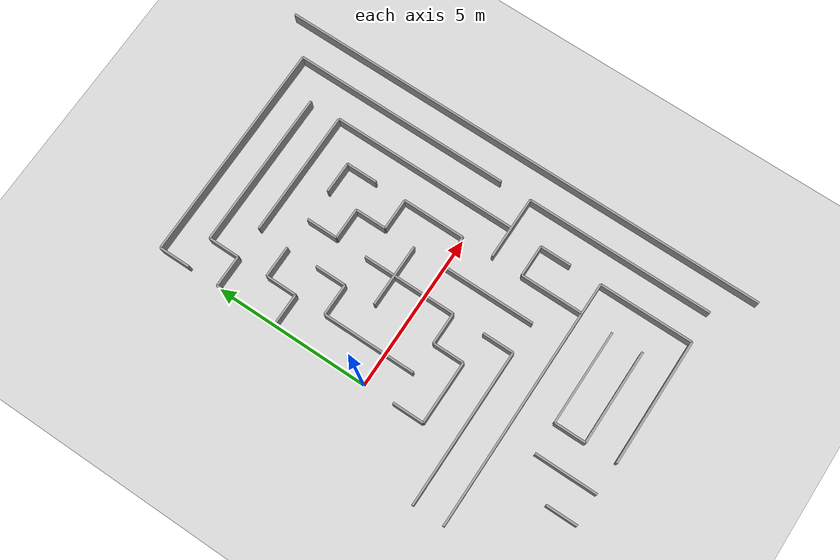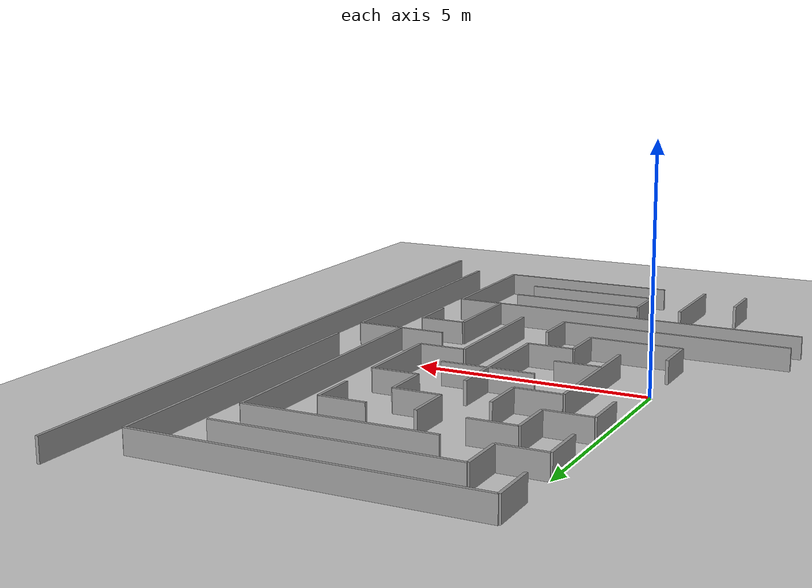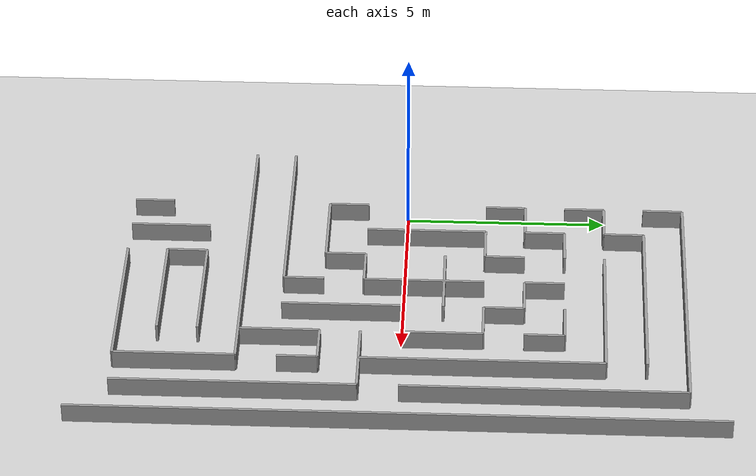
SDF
<sdf version="1.7">
 <world name="maze_world">
  <include><uri>model://sun</uri></include>
  <include><uri>model://ground_plane</uri></include>
  <model name="optimized_wall_2">
   <static>1</static>
   <pose>4.0 -7.0 0.25 0 0 0.0</pose>
   <link name="link">
    <collision name="collision"><geometry><box><size>4.0 0.066 0.5</size></box></geometry></collision>
    <visual name="visual">
     <geometry><box><size>4.0 0.066 0.5</size></box></geometry>
     <material>
      <script><uri>file://media/materials/scripts/gazebo.material</uri><name>Gazebo/Grey</name></script>
     </material>
    </visual>
   </link>
  </model>
  <model name="optimized_wall_5">
   <static>1</static>
   <pose>3.5 -6.0 0.25 0 0 0.0</pose>
   <link name="link">
    <collision name="collision"><geometry><box><size>3.0 0.066 0.5</size></box></geometry></collision>
    <visual name="visual">
     <geometry><box><size>3.0 0.066 0.5</size></box></geometry>
     <material>
      <script><uri>file://media/materials/scripts/gazebo.material</uri><name>Gazebo/Grey</name></script>
     </material>
    </visual>
   </link>
  </model>
  <model name="optimized_wall_8">
   <static>1</static>
   <pose>3.5 -5.0 0.25 0 0 0.0</pose>
   <link name="link">
    <collision name="collision"><geometry><box><size>3.0 0.066 0.5</size></box></geometry></collision>
    <visual name="visual">
     <geometry><box><size>3.0 0.066 0.5</size></box></geometry>
     <material>
      <script><uri>file://media/materials/scripts/gazebo.material</uri><name>Gazebo/Grey</name></script>
     </material>
    </visual>
   </link>
  </model>
  <model name="optimized_wall_10">
   <static>1</static>
   <pose>2.0 -4.0 0.25 0 0 0.0</pose>
   <link name="link">
    <collision name="collision"><geometry><box><size>8.0 0.066 0.5</size></box></geometry></collision>
    <visual name="visual">
     <geometry><box><size>8.0 0.066 0.5</size></box></geometry>
     <material>
      <script><uri>file://media/materials/scripts/gazebo.material</uri><name>Gazebo/Grey</name></script>
     </material>
    </visual>
   </link>
  </model>
  <model name="optimized_wall_12">
   <static>1</static>
   <pose>0.5 -3.0 0.25 0 0 0.0</pose>
   <link name="link">
    <collision name="collision"><geometry><box><size>5.0 0.066 0.5</size></box></geometry></collision>
    <visual name="visual">
     <geometry><box><size>5.0 0.066 0.5</size></box></geometry>
     <material>
      <script><uri>file://media/materials/scripts/gazebo.material</uri><name>Gazebo/Grey</name></script>
     </material>
    </visual>
   </link>
  </model>
  <model name="optimized_wall_15">
   <static>1</static>
   <pose>1.0 -2.0 0.25 0 0 0.0</pose>
   <link name="link">
    <collision name="collision"><geometry><box><size>2.0 0.066 0.5</size></box></geometry></collision>
    <visual name="visual">
     <geometry><box><size>2.0 0.066 0.5</size></box></geometry>
     <material>
      <script><uri>file://media/materials/scripts/gazebo.material</uri><name>Gazebo/Grey</name></script>
     </material>
    </visual>
   </link>
  </model>
  <model name="optimized_wall_16">
   <static>1</static>
   <pose>5.5 -2.0 0.25 0 0 0.0</pose>
   <link name="link">
    <collision name="collision"><geometry><box><size>1.0 0.066 0.5</size></box></geometry></collision>
    <visual name="visual">
     <geometry><box><size>1.0 0.066 0.5</size></box></geometry>
     <material>
      <script><uri>file://media/materials/scripts/gazebo.material</uri><name>Gazebo/Grey</name></script>
     </material>
    </visual>
   </link>
  </model>
  <model name="optimized_wall_19">
   <static>1</static>
   <pose>2.5 -1.0 0.25 0 0 0.0</pose>
   <link name="link">
    <collision name="collision"><geometry><box><size>1.0 0.066 0.5</size></box></geometry></collision>
    <visual name="visual">
     <geometry><box><size>1.0 0.066 0.5</size></box></geometry>
     <material>
      <script><uri>file://media/materials/scripts/gazebo.material</uri><name>Gazebo/Grey</name></script>
     </material>
    </visual>
   </link>
  </model>
  <model name="optimized_wall_20">
   <static>1</static>
   <pose>6.0 -1.0 0.25 0 0 0.0</pose>
   <link name="link">
    <collision name="collision"><geometry><box><size>2.0 0.066 0.5</size></box></geometry></collision>
    <visual name="visual">
     <geometry><box><size>2.0 0.066 0.5</size></box></geometry>
     <material>
      <script><uri>file://media/materials/scripts/gazebo.material</uri><name>Gazebo/Grey</name></script>
     </material>
    </visual>
   </link>
  </model>
  <model name="optimized_wall_22">
   <static>1</static>
   <pose>1.5 0.0 0.25 0 0 0.0</pose>
   <link name="link">
    <collision name="collision"><geometry><box><size>1.0 0.066 0.5</size></box></geometry></collision>
    <visual name="visual">
     <geometry><box><size>1.0 0.066 0.5</size></box></geometry>
     <material>
      <script><uri>file://media/materials/scripts/gazebo.material</uri><name>Gazebo/Grey</name></script>
     </material>
    </visual>
   </link>
  </model>
  <model name="optimized_wall_23">
   <static>1</static>
   <pose>4.5 0.0 0.25 0 0 0.0</pose>
   <link name="link">
    <collision name="collision"><geometry><box><size>1.0 0.066 0.5</size></box></geometry></collision>
    <visual name="visual">
     <geometry><box><size>1.0 0.066 0.5</size></box></geometry>
     <material>
      <script><uri>file://media/materials/scripts/gazebo.material</uri><name>Gazebo/Grey</name></script>
     </material>
    </visual>
   </link>
  </model>
  <model name="optimized_wall_25">
   <static>1</static>
   <pose>3.0 1.0 0.25 0 0 0.0</pose>
   <link name="link">
    <collision name="collision"><geometry><box><size>2.0 0.066 0.5</size></box></geometry></collision>
    <visual name="visual">
     <geometry><box><size>2.0 0.066 0.5</size></box></geometry>
     <material>
      <script><uri>file://media/materials/scripts/gazebo.material</uri><name>Gazebo/Grey</name></script>
     </material>
    </visual>
   </link>
  </model>
  <model name="optimized_wall_28">
   <static>1</static>
   <pose>1.5 2.0 0.25 0 0 0.0</pose>
   <link name="link">
    <collision name="collision"><geometry><box><size>1.0 0.066 0.5</size></box></geometry></collision>
    <visual name="visual">
     <geometry><box><size>1.0 0.066 0.5</size></box></geometry>
     <material>
      <script><uri>file://media/materials/scripts/gazebo.material</uri><name>Gazebo/Grey</name></script>
     </material>
    </visual>
   </link>
  </model>
  <model name="optimized_wall_29">
   <static>1</static>
   <pose>4.5 2.0 0.25 0 0 0.0</pose>
   <link name="link">
    <collision name="collision"><geometry><box><size>1.0 0.066 0.5</size></box></geometry></collision>
    <visual name="visual">
     <geometry><box><size>1.0 0.066 0.5</size></box></geometry>
     <material>
      <script><uri>file://media/materials/scripts/gazebo.material</uri><name>Gazebo/Grey</name></script>
     </material>
    </visual>
   </link>
  </model>
  <model name="optimized_wall_31">
   <static>1</static>
   <pose>0.5 3.0 0.25 0 0 0.0</pose>
   <link name="link">
    <collision name="collision"><geometry><box><size>1.0 0.066 0.5</size></box></geometry></collision>
    <visual name="visual">
     <geometry><box><size>1.0 0.066 0.5</size></box></geometry>
     <material>
      <script><uri>file://media/materials/scripts/gazebo.material</uri><name>Gazebo/Grey</name></script>
     </material>
    </visual>
   </link>
  </model>
  <model name="optimized_wall_32">
   <static>1</static>
   <pose>3.5 3.0 0.25 0 0 0.0</pose>
   <link name="link">
    <collision name="collision"><geometry><box><size>1.0 0.066 0.5</size></box></geometry></collision>
    <visual name="visual">
     <geometry><box><size>1.0 0.066 0.5</size></box></geometry>
     <material>
      <script><uri>file://media/materials/scripts/gazebo.material</uri><name>Gazebo/Grey</name></script>
     </material>
    </visual>
   </link>
  </model>
  <model name="optimized_wall_35">
   <static>1</static>
   <pose>1.5 4.0 0.25 0 0 0.0</pose>
   <link name="link">
    <collision name="collision"><geometry><box><size>1.0 0.066 0.5</size></box></geometry></collision>
    <visual name="visual">
     <geometry><box><size>1.0 0.066 0.5</size></box></geometry>
     <material>
      <script><uri>file://media/materials/scripts/gazebo.material</uri><name>Gazebo/Grey</name></script>
     </material>
    </visual>
   </link>
  </model>
  <model name="optimized_wall_36">
   <static>1</static>
   <pose>4.5 4.0 0.25 0 0 0.0</pose>
   <link name="link">
    <collision name="collision"><geometry><box><size>1.0 0.066 0.5</size></box></geometry></collision>
    <visual name="visual">
     <geometry><box><size>1.0 0.066 0.5</size></box></geometry>
     <material>
      <script><uri>file://media/materials/scripts/gazebo.material</uri><name>Gazebo/Grey</name></script>
     </material>
    </visual>
   </link>
  </model>
  <model name="optimized_wall_40">
   <static>1</static>
   <pose>0.5 5.0 0.25 0 0 0.0</pose>
   <link name="link">
    <collision name="collision"><geometry><box><size>1.0 0.066 0.5</size></box></geometry></collision>
    <visual name="visual">
     <geometry><box><size>1.0 0.066 0.5</size></box></geometry>
     <material>
      <script><uri>file://media/materials/scripts/gazebo.material</uri><name>Gazebo/Grey</name></script>
     </material>
    </visual>
   </link>
  </model>
  <model name="optimized_wall_41">
   <static>1</static>
   <pose>4.0 5.0 0.25 0 0 0.0</pose>
   <link name="link">
    <collision name="collision"><geometry><box><size>4.0 0.066 0.5</size></box></geometry></collision>
    <visual name="visual">
     <geometry><box><size>4.0 0.066 0.5</size></box></geometry>
     <material>
      <script><uri>file://media/materials/scripts/gazebo.material</uri><name>Gazebo/Grey</name></script>
     </material>
    </visual>
   </link>
  </model>
  <model name="optimized_wall_45">
   <static>1</static>
   <pose>3.5 6.0 0.25 0 0 0.0</pose>
   <link name="link">
    <collision name="collision"><geometry><box><size>5.0 0.066 0.5</size></box></geometry></collision>
    <visual name="visual">
     <geometry><box><size>5.0 0.066 0.5</size></box></geometry>
     <material>
      <script><uri>file://media/materials/scripts/gazebo.material</uri><name>Gazebo/Grey</name></script>
     </material>
    </visual>
   </link>
  </model>
  <model name="optimized_wall_48">
   <static>1</static>
   <pose>3.5 7.0 0.25 0 0 0.0</pose>
   <link name="link">
    <collision name="collision"><geometry><box><size>7.0 0.066 0.5</size></box></geometry></collision>
    <visual name="visual">
     <geometry><box><size>7.0 0.066 0.5</size></box></geometry>
     <material>
      <script><uri>file://media/materials/scripts/gazebo.material</uri><name>Gazebo/Grey</name></script>
     </material>
    </visual>
   </link>
  </model>
  <model name="optimized_wall_70">
   <static>1</static>
   <pose>0.0 -6.5 0.25 0 0 1.570796</pose>
   <link name="link">
    <collision name="collision"><geometry><box><size>1.0 0.066 0.5</size></box></geometry></collision>
    <visual name="visual">
     <geometry><box><size>1.0 0.066 0.5</size></box></geometry>
     <material>
      <script><uri>file://media/materials/scripts/gazebo.material</uri><name>Gazebo/Grey</name></script>
     </material>
    </visual>
   </link>
  </model>
  <model name="optimized_wall_71">
   <static>1</static>
   <pose>0.0 -1.5 0.25 0 0 1.570796</pose>
   <link name="link">
    <collision name="collision"><geometry><box><size>1.0 0.066 0.5</size></box></geometry></collision>
    <visual name="visual">
     <geometry><box><size>1.0 0.066 0.5</size></box></geometry>
     <material>
      <script><uri>file://media/materials/scripts/gazebo.material</uri><name>Gazebo/Grey</name></script>
     </material>
    </visual>
   </link>
  </model>
  <model name="optimized_wall_72">
   <static>1</static>
   <pose>0.0 2.5 0.25 0 0 1.570796</pose>
   <link name="link">
    <collision name="collision"><geometry><box><size>1.0 0.066 0.5</size></box></geometry></collision>
    <visual name="visual">
     <geometry><box><size>1.0 0.066 0.5</size></box></geometry>
     <material>
      <script><uri>file://media/materials/scripts/gazebo.material</uri><name>Gazebo/Grey</name></script>
     </material>
    </visual>
   </link>
  </model>
  <model name="optimized_wall_73">
   <static>1</static>
   <pose>0.0 4.5 0.25 0 0 1.570796</pose>
   <link name="link">
    <collision name="collision"><geometry><box><size>1.0 0.066 0.5</size></box></geometry></collision>
    <visual name="visual">
     <geometry><box><size>1.0 0.066 0.5</size></box></geometry>
     <material>
      <script><uri>file://media/materials/scripts/gazebo.material</uri><name>Gazebo/Grey</name></script>
     </material>
    </visual>
   </link>
  </model>
  <model name="optimized_wall_74">
   <static>1</static>
   <pose>0.0 6.5 0.25 0 0 1.570796</pose>
   <link name="link">
    <collision name="collision"><geometry><box><size>1.0 0.066 0.5</size></box></geometry></collision>
    <visual name="visual">
     <geometry><box><size>1.0 0.066 0.5</size></box></geometry>
     <material>
      <script><uri>file://media/materials/scripts/gazebo.material</uri><name>Gazebo/Grey</name></script>
     </material>
    </visual>
   </link>
  </model>
  <model name="optimized_wall_75">
   <static>1</static>
   <pose>1.0 -6.0 0.25 0 0 1.570796</pose>
   <link name="link">
    <collision name="collision"><geometry><box><size>2.0 0.066 0.5</size></box></geometry></collision>
    <visual name="visual">
     <geometry><box><size>2.0 0.066 0.5</size></box></geometry>
     <material>
      <script><uri>file://media/materials/scripts/gazebo.material</uri><name>Gazebo/Grey</name></script>
     </material>
    </visual>
   </link>
  </model>
  <model name="optimized_wall_76">
   <static>1</static>
   <pose>1.0 0.5 0.25 0 0 1.570796</pose>
   <link name="link">
    <collision name="collision"><geometry><box><size>3.0 0.066 0.5</size></box></geometry></collision>
    <visual name="visual">
     <geometry><box><size>3.0 0.066 0.5</size></box></geometry>
     <material>
      <script><uri>file://media/materials/scripts/gazebo.material</uri><name>Gazebo/Grey</name></script>
     </material>
    </visual>
   </link>
  </model>
  <model name="optimized_wall_77">
   <static>1</static>
   <pose>1.0 3.5 0.25 0 0 1.570796</pose>
   <link name="link">
    <collision name="collision"><geometry><box><size>1.0 0.066 0.5</size></box></geometry></collision>
    <visual name="visual">
     <geometry><box><size>1.0 0.066 0.5</size></box></geometry>
     <material>
      <script><uri>file://media/materials/scripts/gazebo.material</uri><name>Gazebo/Grey</name></script>
     </material>
    </visual>
   </link>
  </model>
  <model name="optimized_wall_78">
   <static>1</static>
   <pose>1.0 5.5 0.25 0 0 1.570796</pose>
   <link name="link">
    <collision name="collision"><geometry><box><size>1.0 0.066 0.5</size></box></geometry></collision>
    <visual name="visual">
     <geometry><box><size>1.0 0.066 0.5</size></box></geometry>
     <material>
      <script><uri>file://media/materials/scripts/gazebo.material</uri><name>Gazebo/Grey</name></script>
     </material>
    </visual>
   </link>
  </model>
  <model name="optimized_wall_79">
   <static>1</static>
   <pose>2.0 -5.5 0.25 0 0 1.570796</pose>
   <link name="link">
    <collision name="collision"><geometry><box><size>1.0 0.066 0.5</size></box></geometry></collision>
    <visual name="visual">
     <geometry><box><size>1.0 0.066 0.5</size></box></geometry>
     <material>
      <script><uri>file://media/materials/scripts/gazebo.material</uri><name>Gazebo/Grey</name></script>
     </material>
    </visual>
   </link>
  </model>
  <model name="optimized_wall_80">
   <static>1</static>
   <pose>2.0 -1.5 0.25 0 0 1.570796</pose>
   <link name="link">
    <collision name="collision"><geometry><box><size>1.0 0.066 0.5</size></box></geometry></collision>
    <visual name="visual">
     <geometry><box><size>1.0 0.066 0.5</size></box></geometry>
     <material>
      <script><uri>file://media/materials/scripts/gazebo.material</uri><name>Gazebo/Grey</name></script>
     </material>
    </visual>
   </link>
  </model>
  <model name="optimized_wall_81">
   <static>1</static>
   <pose>2.0 2.5 0.25 0 0 1.570796</pose>
   <link name="link">
    <collision name="collision"><geometry><box><size>1.0 0.066 0.5</size></box></geometry></collision>
    <visual name="visual">
     <geometry><box><size>1.0 0.066 0.5</size></box></geometry>
     <material>
      <script><uri>file://media/materials/scripts/gazebo.material</uri><name>Gazebo/Grey</name></script>
     </material>
    </visual>
   </link>
  </model>
  <model name="optimized_wall_82">
   <static>1</static>
   <pose>3.0 -2.5 0.25 0 0 1.570796</pose>
   <link name="link">
    <collision name="collision"><geometry><box><size>1.0 0.066 0.5</size></box></geometry></collision>
    <visual name="visual">
     <geometry><box><size>1.0 0.066 0.5</size></box></geometry>
     <material>
      <script><uri>file://media/materials/scripts/gazebo.material</uri><name>Gazebo/Grey</name></script>
     </material>
    </visual>
   </link>
  </model>
  <model name="optimized_wall_83">
   <static>1</static>
   <pose>3.0 0.5 0.25 0 0 1.570796</pose>
   <link name="link">
    <collision name="collision"><geometry><box><size>3.0 0.066 0.5</size></box></geometry></collision>
    <visual name="visual">
     <geometry><box><size>3.0 0.066 0.5</size></box></geometry>
     <material>
      <script><uri>file://media/materials/scripts/gazebo.material</uri><name>Gazebo/Grey</name></script>
     </material>
    </visual>
   </link>
  </model>
  <model name="optimized_wall_84">
   <static>1</static>
   <pose>3.0 3.5 0.25 0 0 1.570796</pose>
   <link name="link">
    <collision name="collision"><geometry><box><size>1.0 0.066 0.5</size></box></geometry></collision>
    <visual name="visual">
     <geometry><box><size>1.0 0.066 0.5</size></box></geometry>
     <material>
      <script><uri>file://media/materials/scripts/gazebo.material</uri><name>Gazebo/Grey</name></script>
     </material>
    </visual>
   </link>
  </model>
  <model name="optimized_wall_85">
   <static>1</static>
   <pose>4.0 -1.5 0.25 0 0 1.570796</pose>
   <link name="link">
    <collision name="collision"><geometry><box><size>3.0 0.066 0.5</size></box></geometry></collision>
    <visual name="visual">
     <geometry><box><size>3.0 0.066 0.5</size></box></geometry>
     <material>
      <script><uri>file://media/materials/scripts/gazebo.material</uri><name>Gazebo/Grey</name></script>
     </material>
    </visual>
   </link>
  </model>
  <model name="optimized_wall_86">
   <static>1</static>
   <pose>4.0 2.5 0.25 0 0 1.570796</pose>
   <link name="link">
    <collision name="collision"><geometry><box><size>1.0 0.066 0.5</size></box></geometry></collision>
    <visual name="visual">
     <geometry><box><size>1.0 0.066 0.5</size></box></geometry>
     <material>
      <script><uri>file://media/materials/scripts/gazebo.material</uri><name>Gazebo/Grey</name></script>
     </material>
    </visual>
   </link>
  </model>
  <model name="optimized_wall_87">
   <static>1</static>
   <pose>5.0 -3.0 0.25 0 0 1.570796</pose>
   <link name="link">
    <collision name="collision"><geometry><box><size>2.0 0.066 0.5</size></box></geometry></collision>
    <visual name="visual">
     <geometry><box><size>2.0 0.066 0.5</size></box></geometry>
     <material>
      <script><uri>file://media/materials/scripts/gazebo.material</uri><name>Gazebo/Grey</name></script>
     </material>
    </visual>
   </link>
  </model>
  <model name="optimized_wall_88">
   <static>1</static>
   <pose>5.0 1.0 0.25 0 0 1.570796</pose>
   <link name="link">
    <collision name="collision"><geometry><box><size>2.0 0.066 0.5</size></box></geometry></collision>
    <visual name="visual">
     <geometry><box><size>2.0 0.066 0.5</size></box></geometry>
     <material>
      <script><uri>file://media/materials/scripts/gazebo.material</uri><name>Gazebo/Grey</name></script>
     </material>
    </visual>
   </link>
  </model>
  <model name="optimized_wall_89">
   <static>1</static>
   <pose>5.0 3.5 0.25 0 0 1.570796</pose>
   <link name="link">
    <collision name="collision"><geometry><box><size>1.0 0.066 0.5</size></box></geometry></collision>
    <visual name="visual">
     <geometry><box><size>1.0 0.066 0.5</size></box></geometry>
     <material>
      <script><uri>file://media/materials/scripts/gazebo.material</uri><name>Gazebo/Grey</name></script>
     </material>
    </visual>
   </link>
  </model>
  <model name="optimized_wall_90">
   <static>1</static>
   <pose>6.0 -5.5 0.25 0 0 1.570796</pose>
   <link name="link">
    <collision name="collision"><geometry><box><size>3.0 0.066 0.5</size></box></geometry></collision>
    <visual name="visual">
     <geometry><box><size>3.0 0.066 0.5</size></box></geometry>
     <material>
      <script><uri>file://media/materials/scripts/gazebo.material</uri><name>Gazebo/Grey</name></script>
     </material>
    </visual>
   </link>
  </model>
  <model name="optimized_wall_91">
   <static>1</static>
   <pose>6.0 -2.5 0.25 0 0 1.570796</pose>
   <link name="link">
    <collision name="collision"><geometry><box><size>1.0 0.066 0.5</size></box></geometry></collision>
    <visual name="visual">
     <geometry><box><size>1.0 0.066 0.5</size></box></geometry>
     <material>
      <script><uri>file://media/materials/scripts/gazebo.material</uri><name>Gazebo/Grey</name></script>
     </material>
    </visual>
   </link>
  </model>
  <model name="optimized_wall_92">
   <static>1</static>
   <pose>6.0 2.0 0.25 0 0 1.570796</pose>
   <link name="link">
    <collision name="collision"><geometry><box><size>6.0 0.066 0.5</size></box></geometry></collision>
    <visual name="visual">
     <geometry><box><size>6.0 0.066 0.5</size></box></geometry>
     <material>
      <script><uri>file://media/materials/scripts/gazebo.material</uri><name>Gazebo/Grey</name></script>
     </material>
    </visual>
   </link>
  </model>
  <model name="optimized_wall_93">
   <static>1</static>
   <pose>7.0 -4.0 0.25 0 0 1.570796</pose>
   <link name="link">
    <collision name="collision"><geometry><box><size>6.0 0.066 0.5</size></box></geometry></collision>
    <visual name="visual">
     <geometry><box><size>6.0 0.066 0.5</size></box></geometry>
     <material>
      <script><uri>file://media/materials/scripts/gazebo.material</uri><name>Gazebo/Grey</name></script>
     </material>
    </visual>
   </link>
  </model>
  <model name="optimized_wall_94">
   <static>1</static>
   <pose>7.0 3.5 0.25 0 0 1.570796</pose>
   <link name="link">
    <collision name="collision"><geometry><box><size>7.0 0.066 0.5</size></box></geometry></collision>
    <visual name="visual">
     <geometry><box><size>7.0 0.066 0.5</size></box></geometry>
     <material>
      <script><uri>file://media/materials/scripts/gazebo.material</uri><name>Gazebo/Grey</name></script>
     </material>
    </visual>
   </link>
  </model>
  <model name="optimized_wall_95">
   <static>1</static>
   <pose>8.0 0.0 0.25 0 0 1.570796</pose>
   <link name="link">
    <collision name="collision"><geometry><box><size>16.0 0.066 0.5</size></box></geometry></collision>
    <visual name="visual">
     <geometry><box><size>16.0 0.066 0.5</size></box></geometry>
     <material>
      <script><uri>file://media/materials/scripts/gazebo.material</uri><name>Gazebo/Grey</name></script>
     </material>
    </visual>
   </link>
  </model>
 </world>
</sdf>
